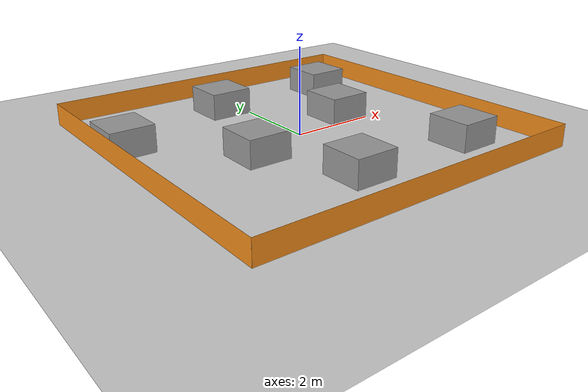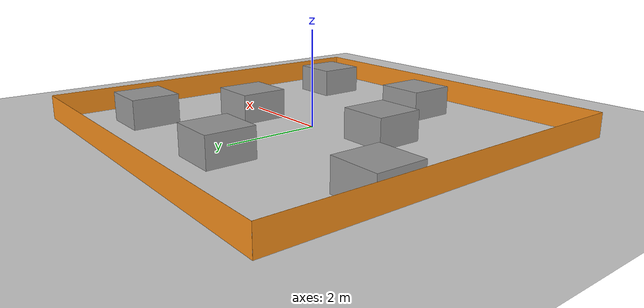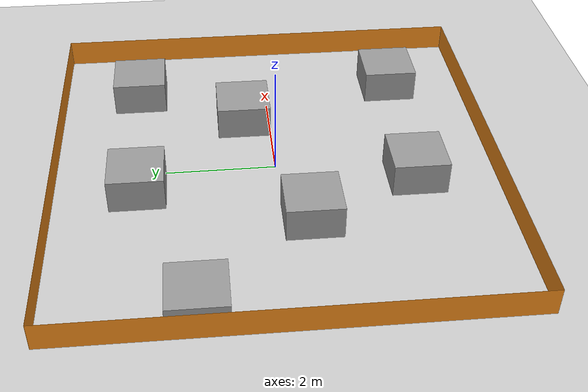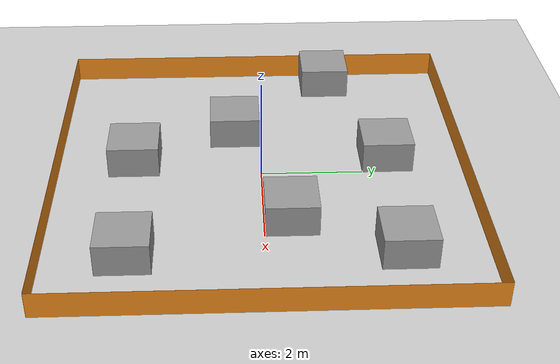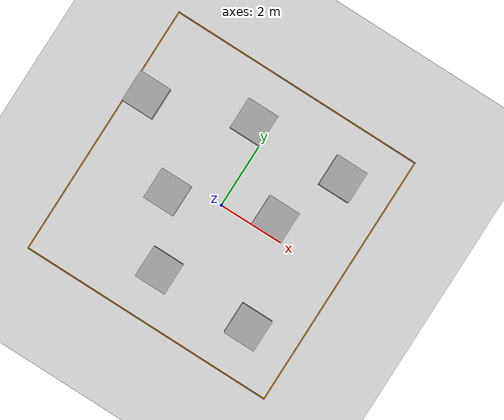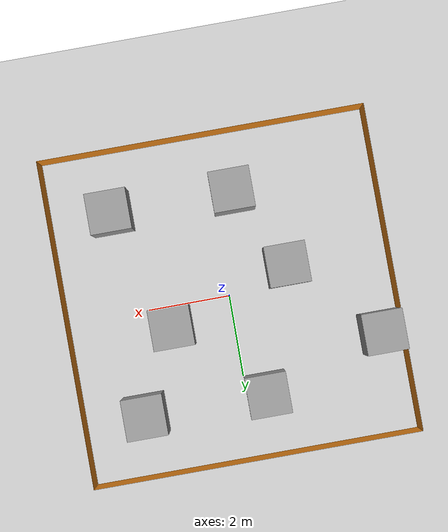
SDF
<sdf version="1.6">
 <world name="default">
  <light name="sun" type="directional">
   <pose>0 0 10 0 -0 0</pose>
   <diffuse>0.8 0.8 0.8 1</diffuse>
   <specular>0.1 0.1 0.1 1</specular>
   <attenuation>
    <range>1000</range>
    <constant>0.9</constant>
    <linear>0.01</linear>
    <quadratic>0.001</quadratic>
   </attenuation>
   <direction>-0.5 0.5 -1</direction>
  </light>
  <model name="ground_plane">
   <static>1</static>
   <link name="link">
    <collision name="collision">
     <geometry><plane><normal>0 0 1</normal><size>100 100</size></plane></geometry>
     <surface><friction><ode><mu>100</mu><mu2>50</mu2></ode></friction></surface>
    </collision>
    <visual name="visual">
     <cast_shadows>0</cast_shadows>
     <geometry><plane><normal>0 0 1</normal><size>100 100</size></plane></geometry>
     <material>
      <script><uri>file://media/materials/scripts/gazebo.material</uri><name>Gazebo/Grey</name></script>
     </material>
    </visual>
   </link>
  </model>
  <gravity>0 0 -9.8</gravity>
  <magnetic_field>6e-06 2.3e-05 -4.2e-05</magnetic_field>
  <atmosphere type="adiabatic"/>
  <physics name="default_physics" default="0" type="ode">
   <max_step_size>0.001</max_step_size>
   <real_time_factor>1</real_time_factor>
   <real_time_update_rate>1000</real_time_update_rate>
  </physics>
  <scene><ambient>0.4 0.4 0.4 1</ambient><background>0.7 0.7 0.7 1</background><shadows>1</shadows></scene>
  <spherical_coordinates>
   <surface_model>EARTH_WGS84</surface_model>
   <latitude_deg>0</latitude_deg>
   <longitude_deg>0</longitude_deg>
   <elevation>0</elevation>
   <heading_deg>0</heading_deg>
  </spherical_coordinates>
  <model name="wall_0_clone">
   <static>1</static>
   <link name="link">
    <collision name="collision"><geometry><box><size>7.99768 0.001 1</size></box></geometry></collision>
    <visual name="visual">
     <geometry><box><size>7.99768 0.001 1</size></box></geometry>
     <material>
      <script><name>Gazebo/Orange</name><uri>file://media/materials/scripts/gazebo.material</uri></script>
     </material>
    </visual>
   </link>
   <pose>0 -4 0 0 0 -3.14159</pose>
  </model>
  <model name="wall_0_clone_clone">
   <static>1</static>
   <link name="link">
    <collision name="collision"><geometry><box><size>7.99771 0.001 1</size></box></geometry></collision>
    <visual name="visual">
     <geometry><box><size>7.99771 0.001 1</size></box></geometry>
     <material>
      <script><name>Gazebo/Orange</name><uri>file://media/materials/scripts/gazebo.material</uri></script>
     </material>
    </visual>
   </link>
   <pose>4 0 0 0 -0 1.5708</pose>
  </model>
  <model name="wall_0_clone_clone_clone">
   <static>1</static>
   <link name="link">
    <collision name="collision"><geometry><box><size>7.99771 0.001 1</size></box></geometry></collision>
    <visual name="visual">
     <geometry><box><size>7.99771 0.001 1</size></box></geometry>
     <material>
      <script><name>Gazebo/Orange</name><uri>file://media/materials/scripts/gazebo.material</uri></script>
     </material>
    </visual>
   </link>
   <pose>-4 0 0 0 -0 1.5708</pose>
  </model>
  <model name="wall_0_clone_clone_0">
   <static>1</static>
   <link name="link">
    <collision name="collision"><geometry><box><size>7.99771 0.001 1</size></box></geometry></collision>
    <visual name="visual">
     <geometry><box><size>7.99771 0.001 1</size></box></geometry>
     <material>
      <script><name>Gazebo/Orange</name><uri>file://media/materials/scripts/gazebo.material</uri></script>
     </material>
    </visual>
   </link>
   <pose>0 4 0 0 0 -3.14159</pose>
  </model>
  <model name="unit_box">
   <pose>2.5 2.5 0.310359 0 -0 0</pose>
   <link name="link">
    <inertial>
     <mass>1</mass>
     <inertia>
      <ixx>0.166667</ixx>
      <ixy>0</ixy>
      <ixz>0</ixz>
      <iyy>0.166667</iyy>
      <iyz>0</iyz>
      <izz>0.166667</izz>
     </inertia>
    </inertial>
    <collision name="collision"><geometry><box><size>1 1 0.620718</size></box></geometry></collision>
    <visual name="visual">
     <geometry><box><size>1 1 0.620718</size></box></geometry>
     <material>
      <script><name>Gazebo/Grey</name><uri>file://media/materials/scripts/gazebo.material</uri></script>
     </material>
    </visual>
   </link>
  </model>
  <model name="unit_box_clone">
   <pose>2.5 -2.5 0.310359 0 -0 0</pose>
   <link name="link">
    <inertial>
     <mass>1</mass>
     <inertia>
      <ixx>0.166667</ixx>
      <ixy>0</ixy>
      <ixz>0</ixz>
      <iyy>0.166667</iyy>
      <iyz>0</iyz>
      <izz>0.166667</izz>
     </inertia>
    </inertial>
    <collision name="collision"><geometry><box><size>1 1 0.620719</size></box></geometry></collision>
    <visual name="visual">
     <geometry><box><size>1 1 0.620719</size></box></geometry>
     <material>
      <script><name>Gazebo/Grey</name><uri>file://media/materials/scripts/gazebo.material</uri></script>
     </material>
    </visual>
   </link>
  </model>
  <model name="unit_box_clone_0">
   <pose>-1.5 -0.5 0.310359 0 -0 0</pose>
   <link name="link">
    <inertial>
     <mass>1</mass>
     <inertia>
      <ixx>0.166667</ixx>
      <ixy>0</ixy>
      <ixz>0</ixz>
      <iyy>0.166667</iyy>
      <iyz>0</iyz>
      <izz>0.166667</izz>
     </inertia>
    </inertial>
    <collision name="collision"><geometry><box><size>1 1 0.620719</size></box></geometry></collision>
    <visual name="visual">
     <geometry><box><size>1 1 0.620719</size></box></geometry>
     <material>
      <script><name>Gazebo/Grey</name><uri>file://media/materials/scripts/gazebo.material</uri></script>
     </material>
    </visual>
   </link>
  </model>
  <model name="unit_box_clone_1">
   <pose>-0.5 -2.5 0.310359 0 -0 0</pose>
   <link name="link">
    <inertial>
     <mass>1</mass>
     <inertia>
      <ixx>0.166667</ixx>
      <ixy>0</ixy>
      <ixz>0</ixz>
      <iyy>0.166667</iyy>
      <iyz>0</iyz>
      <izz>0.166667</izz>
     </inertia>
    </inertial>
    <collision name="collision"><geometry><box><size>1 1 0.620719</size></box></geometry></collision>
    <visual name="visual">
     <geometry><box><size>1 1 0.620719</size></box></geometry>
     <material>
      <script><name>Gazebo/Grey</name><uri>file://media/materials/scripts/gazebo.material</uri></script>
     </material>
    </visual>
   </link>
  </model>
  <model name="unit_box_clone_2">
   <pose>1.5 0.5 0.310359 0 -0 0</pose>
   <link name="link">
    <inertial>
     <mass>1</mass>
     <inertia>
      <ixx>0.166667</ixx>
      <ixy>0</ixy>
      <ixz>0</ixz>
      <iyy>0.166667</iyy>
      <iyz>0</iyz>
      <izz>0.166667</izz>
     </inertia>
    </inertial>
    <collision name="collision"><geometry><box><size>1 1 0.620719</size></box></geometry></collision>
    <visual name="visual">
     <geometry><box><size>1 1 0.620719</size></box></geometry>
     <material>
      <script><name>Gazebo/Grey</name><uri>file://media/materials/scripts/gazebo.material</uri></script>
     </material>
    </visual>
   </link>
  </model>
  <model name="unit_box_clone_3">
   <pose>-0.5 2.5 0.310359 0 -0 0</pose>
   <link name="link">
    <inertial>
     <mass>1</mass>
     <inertia>
      <ixx>0.166667</ixx>
      <ixy>0</ixy>
      <ixz>0</ixz>
      <iyy>0.166667</iyy>
      <iyz>0</iyz>
      <izz>0.166667</izz>
     </inertia>
    </inertial>
    <collision name="collision"><geometry><box><size>1 1 0.620719</size></box></geometry></collision>
    <visual name="visual">
     <geometry><box><size>1 1 0.620719</size></box></geometry>
     <material>
      <script><name>Gazebo/Grey</name><uri>file://media/materials/scripts/gazebo.material</uri></script>
     </material>
    </visual>
   </link>
  </model>
  <model name="unit_box_clone_0_clone">
   <pose>-3.49951 1.5 0.310359 0 -0 4e-06</pose>
   <link name="link">
    <inertial>
     <mass>1</mass>
     <inertia>
      <ixx>0.166667</ixx>
      <ixy>0</ixy>
      <ixz>0</ixz>
      <iyy>0.166667</iyy>
      <iyz>0</iyz>
      <izz>0.166667</izz>
     </inertia>
    </inertial>
    <collision name="collision"><geometry><box><size>1 1 0.620719</size></box></geometry></collision>
    <visual name="visual">
     <geometry><box><size>1 1 0.620719</size></box></geometry>
     <material>
      <script><name>Gazebo/Grey</name><uri>file://media/materials/scripts/gazebo.material</uri></script>
     </material>
    </visual>
   </link>
  </model>
 </world>
</sdf>
